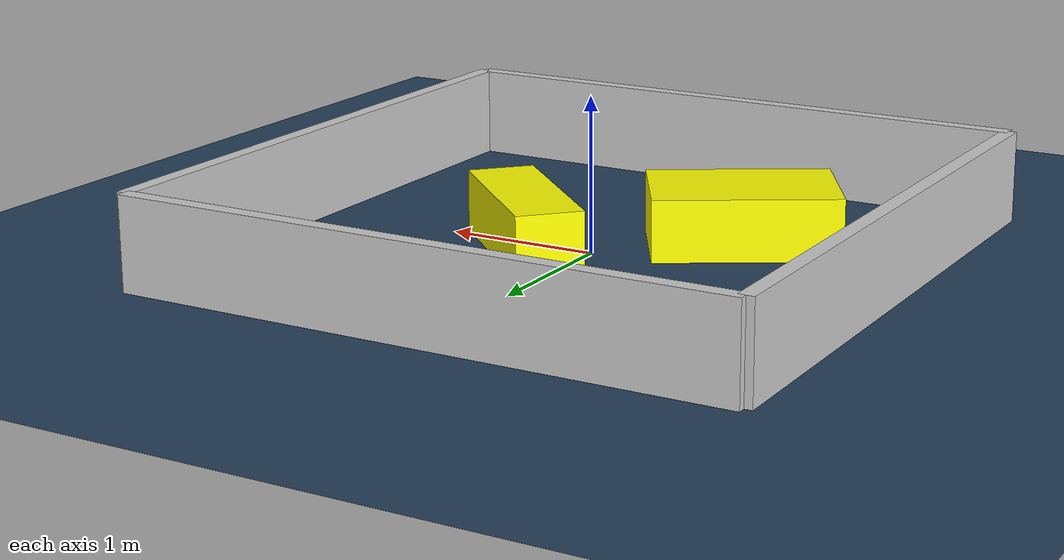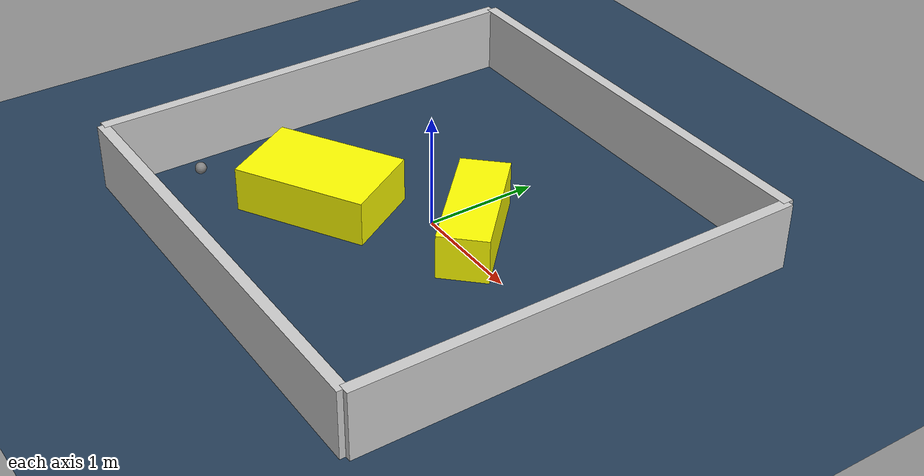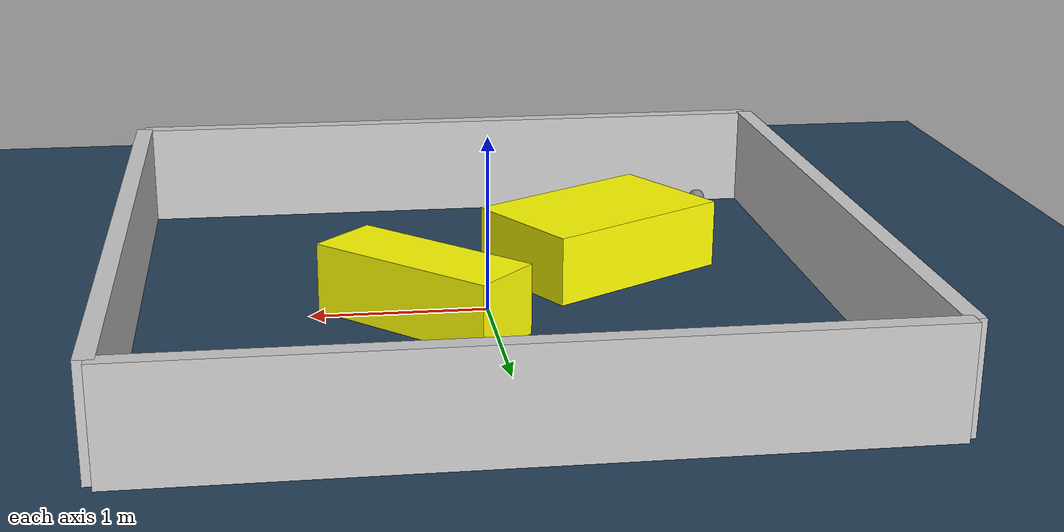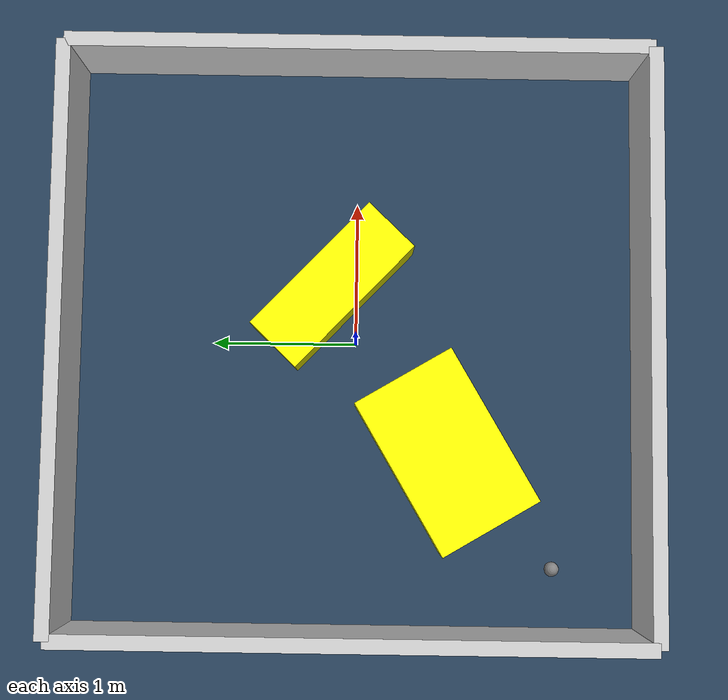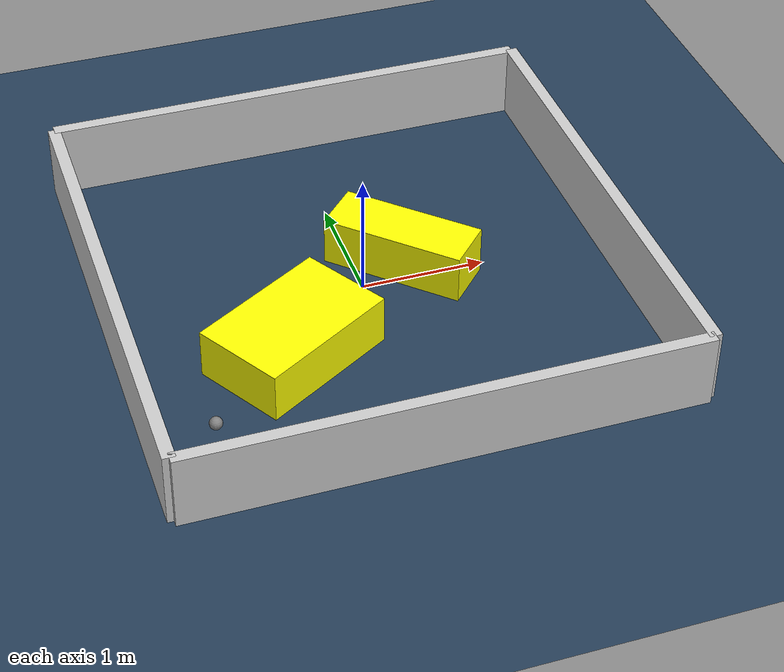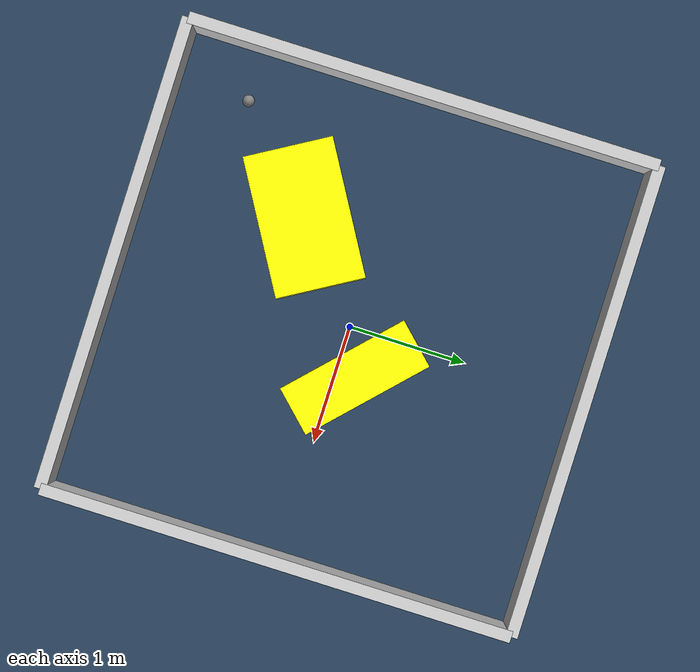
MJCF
<?xml version="1.0" ?>
<mujoco model="generated_environment">
  <option timestep="0.01" integrator="RK4" cone="elliptic"/>
  <default>
    <geom density="1"/>
  </default>
  <asset>
    <texture builtin="gradient" height="3072" rgb1="0.3 0.5 0.7" rgb2="0 0 0" type="skybox" width="512"/>
    <texture builtin="checker" height="300" mark="edge" markrgb="0.8 0.8 0.8" name="groundplane" rgb1="0.2 0.3 0.4" rgb2="0.1 0.2 0.3" type="2d" width="300"/>
    <material name="groundplane" reflectance="0.2" texrepeat="5 5" texture="groundplane" texuniform="true"/>
    <material name="robot" rgba="0.0 1.0 0.0 1"/>
  </asset>
  <worldbody>
    <light dir="0 0 -1" directional="true" pos="0 0 1.5"/>
    <geom condim="4" friction="1.0 0.005 0.001" material="groundplane" name="floor" size="0 0 0.05" type="plane"/>
    <body name="walls">
      <geom name="wall_1" condim="4" pos="-2.0 0.0 0.3" rgba="0.800000011920929 0.800000011920929 0.800000011920929 1.0" size="0.05 2.0 0.3" type="box"/>
      <geom name="wall_2" condim="4" pos="2.0 0.0 0.3" rgba="0.800000011920929 0.800000011920929 0.800000011920929 1.0" size="0.05 2.0 0.3" type="box"/>
      <geom name="wall_3" condim="4" pos="0.0 -2.0 0.3" rgba="0.800000011920929 0.800000011920929 0.800000011920929 1.0" size="2.0 0.05 0.3" type="box"/>
      <geom name="wall_4" condim="4" pos="0.0 2.0 0.3" rgba="0.800000011920929 0.800000011920929 0.800000011920929 1.0" size="2.0 0.05 0.3" type="box"/>
    </body>
    <body name="robot">
      <joint name="joint_x" type="slide" pos="0 0 0" axis="1 0 0"/>
      <joint name="joint_y" type="slide" pos="0 0 0" axis="0 1 0"/>
      <geom name="robot" type="sphere" pos="-1.5285850552737268 -1.3554879081344384 0.2" size="0.05" mass="5." friction="1.0 0.005 0.0001" condim="4"/>
      <site name="sensor_ball"/>
    </body>
    <body name="obstacle_1_movable">
      <geom name="obstacle_1_movable" condim="4" pos="-0.7440827313482643 -0.6248204042162955 0.2" euler="0 0 210.55012422917775" friction="1.0 0.005 0.001" rgba="1 1 0 1" size="0.5946133707919752 0.37877248983624934 0.2" type="box" mass="0.1"/>
      <joint type="free"/>
    </body>
    <body name="obstacle_2_movable">
      <geom name="obstacle_2_movable" condim="4" pos="0.3808283572608475 0.16287127854188377 0.2" euler="0 0 136.27263369205517" friction="1.0 0.005 0.001" rgba="1 1 0 1" size="0.5790153169944791 0.21678068047469568 0.2" type="box" mass="0.1"/>
      <joint type="free"/>
    </body>
  </worldbody>
  <actuator>
    <motor name="actuator_x" joint="joint_x" gear="1" ctrlrange="-1 1"/>
    <motor name="actuator_y" joint="joint_y" gear="1" ctrlrange="-1 1"/>
  </actuator>
</mujoco>
